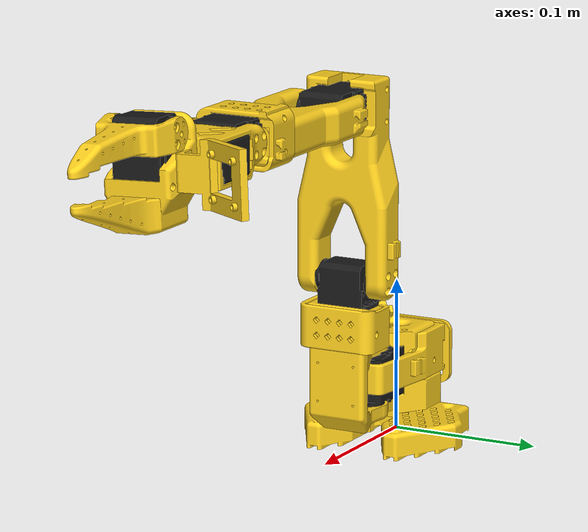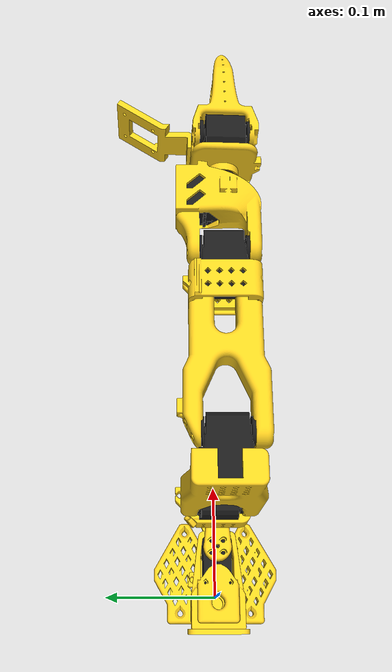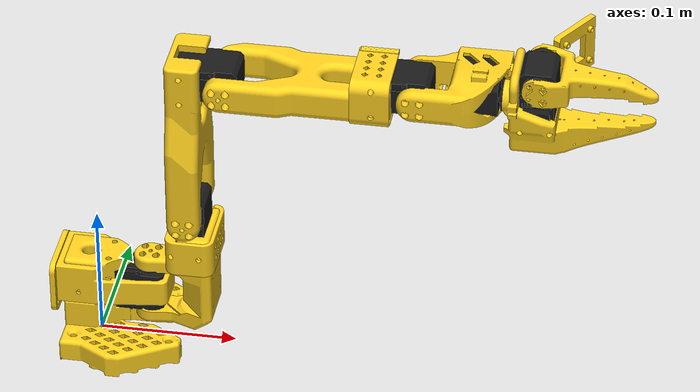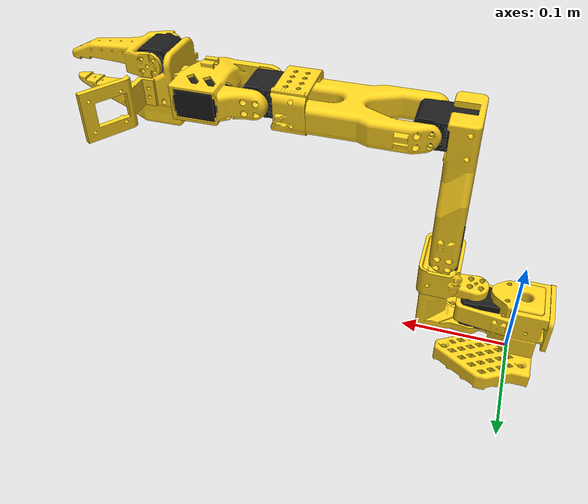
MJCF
<?xml version='1.0' encoding='utf-8'?>
<mujoco model="so101">
  <option integrator="implicitfast" timestep="0.005" cone="elliptic" iterations="10" ls_iterations="20" impratio="10" />

  <compiler angle="radian" meshdir="assets" autolimits="true" />

  <visual>
    <scale contactwidth="0.1" contactheight="0.05" forcewidth="0.02" framelength="0.75" framewidth="0.025" camera="0.2" />
  </visual>

  <default>
    <mesh />

    <default class="so101">
      <joint damping="1" frictionloss="0.1" armature="0.005" />
      <position kp="50" />
      <default class="visual">
        <geom type="mesh" contype="0" conaffinity="0" group="2" />
      </default>
      <default class="collision">
        <geom group="3" condim="3" />
      </default>
      <default class="collision_gripper">
        <geom group="3" condim="6" friction="1 5e-3 5e-4" solref="0.01 1" priority="1" rgba="1.0 0 0 1.0" mass="0" />
      </default>
      <default class="collision_gripper_mesh">
        <geom group="4" condim="6" friction="1 5e-3 5e-4" solref="0.01 1" priority="1" rgba="1.0 0 0 1.0" mass="0" />
      </default>
    </default>

    <default class="sts3215">
      <geom contype="0" conaffinity="0" />
      <joint damping="0.60" frictionloss="0.052" armature="0.028" />

      <position kp="998.22" kv="2.731" forcerange="-2.94 2.94" />
    </default>

    <default class="backlash">

      <joint damping="0.01" frictionloss="0" armature="0.01" limited="true" range="-0.0087267 0.0087267" />
    </default>
  </default>

  <asset>
    <mesh file="waveshare_mounting_plate_so101_v2_drake.obj" name="waveshare_mounting_plate_so101_v2" />
    <mesh file="sts3215_03a_v1_drake.obj" name="sts3215_03a_v1" />
    <mesh file="motor_holder_so101_base_v1_drake.obj" name="motor_holder_so101_base_v1" />
    <mesh file="wrist_roll_follower_so101_v1_drake.obj" name="wrist_roll_follower_so101_v1" />
    <mesh file="moving_jaw_so101_v1_drake.obj" name="moving_jaw_so101_v1" />
    <mesh file="base_motor_holder_so101_v1_drake.obj" name="base_motor_holder_so101_v1" />
    <mesh file="upper_arm_so101_v1_drake.obj" name="upper_arm_so101_v1" />
    <mesh file="wrist_roll_pitch_so101_v2_drake.obj" name="wrist_roll_pitch_so101_v2" />
    <mesh file="under_arm_so101_v1_drake.obj" name="under_arm_so101_v1" />
    <mesh file="rotation_pitch_so101_v1_drake.obj" name="rotation_pitch_so101_v1" />
    <mesh file="motor_holder_so101_wrist_v1_drake.obj" name="motor_holder_so101_wrist_v1" />
    <mesh file="sts3215_03a_no_horn_v1_drake.obj" name="sts3215_03a_no_horn_v1" />
    <mesh file="base_so101_v2_drake.obj" name="base_so101_v2" />
    <mesh file="moving_jaw_so101_gripper_v1_drake.obj" name="moving_jaw_so101_gripper_v1" />
    <mesh file="wrist_roll_follower_so101_camera_mount_drake.obj" name="wrist_roll_follower_so101_camera_mount" />

    <mesh file="wrist_roll_follower_so101_gripper_part0_v1_drake.obj" name="wrist_roll_follower_so101_gripper_part0_v1" />
    <mesh file="moving_jaw_so101_gripper_part0_v1_drake.obj" name="moving_jaw_so101_gripper_part0_v1" />
    <mesh file="moving_jaw_so101_gripper_part1_v1_drake.obj" name="moving_jaw_so101_gripper_part1_v1" />
    <material name="base_motor_holder_so101_v1_material" rgba="1 0.82 0.12 1" />
    <material name="base_so101_v2_material" rgba="1 0.82 0.12 1" />
    <material name="sts3215_03a_v1_material" rgba="0.1 0.1 0.1 1" />
    <material name="waveshare_mounting_plate_so101_v2_material" rgba="1 0.82 0.12 1" />
    <material name="motor_holder_so101_base_v1_material" rgba="1 0.82 0.12 1" />
    <material name="rotation_pitch_so101_v1_material" rgba="1 0.82 0.12 1" />
    <material name="upper_arm_so101_v1_material" rgba="1 0.82 0.12 1" />
    <material name="under_arm_so101_v1_material" rgba="1 0.82 0.12 1" />
    <material name="motor_holder_so101_wrist_v1_material" rgba="1 0.82 0.12 1" />
    <material name="sts3215_03a_no_horn_v1_material" rgba="0.1 0.1 0.1 1.0" />
    <material name="wrist_roll_pitch_so101_v2_material" rgba="1 0.82 0.12 1" />
    <material name="wrist_roll_follower_so101_v1_material" rgba="1 0.82 0.12 1" />
    <material name="moving_jaw_so101_v1_material" rgba="1 0.82 0.12 1" />
  </asset>

  <worldbody>

    <body name="base" pos="0 0 0" quat="1 0 0 0" childclass="so101">
      <inertial pos="0.0137179 -5.19711e-05 0.0334843" mass="0.147" fullinertia="0.000114686 0.000136117 0.000130364 -4.59787e-07 4.97151e-06 9.75275e-08" />

      <geom type="mesh" class="visual" pos="-0.006365 -9.9e-05 -0.0024" quat="1 1 1 1" mesh="base_motor_holder_so101_v1" material="base_motor_holder_so101_v1_material" />

      <geom type="mesh" class="visual" pos="-0.006365 0 -0.0024" quat="1 1 1 1" mesh="base_so101_v2" material="base_so101_v2_material" />

      <geom type="mesh" class="visual" pos="0.0263353 0 0.0437" quat="1 0 0 0" mesh="sts3215_03a_v1" material="sts3215_03a_v1_material" />

      <geom type="mesh" class="visual" pos="-0.0309827 -0.000199 0.0474" quat="1 1 1 1" mesh="waveshare_mounting_plate_so101_v2" material="waveshare_mounting_plate_so101_v2_material" />

      <site group="3" name="baseframe" pos="0 0 0" quat="1 0 0 0" />

      <body name="shoulder" pos="0.0388353 0 0.0624" quat="0 0 -1 0">

        <joint axis="0 0 1" name="shoulder_pan" type="hinge" range="-1.91986 1.91986" class="sts3215" />
        <inertial pos="-0.0307604 -1.7e-05 -0.0252713" mass="0.100006" fullinertia="8.3759e-05 8.10403e-05 2.39783e-05 7.55525e-08 -1.16342e-06 1.54663e-07" />

        <geom type="mesh" class="visual" pos="-0.030399 0.000422 -0.0417" quat="1 1 1 -1" mesh="sts3215_03a_v1" material="sts3215_03a_v1_material" />
        <geom type="box" class="collision" pos="-0.030399 0.000422 -0.0387" quat="1 1 1 -1" size="0.023 0.015 0.01" />

        <geom type="mesh" class="visual" pos="-0.067599 -0.0001778 0.01585" quat="1 1 -1 1" mesh="motor_holder_so101_base_v1" material="motor_holder_so101_base_v1_material" />
        <geom type="box" class="collision" pos="-0.025 0 0.0" quat="1 1 -1 1" size="0.038 0.025 0.02" />

        <geom type="mesh" class="visual" pos="0.012201 2.2e-05 0.0464" quat="1 -1 0 0" mesh="rotation_pitch_so101_v1" material="rotation_pitch_so101_v1_material" />

        <body name="upper_arm" pos="-0.0303992 -0.0182778 -0.0542" quat="1 -1 -1 -1">

          <joint axis="0 0 1" name="shoulder_lift" type="hinge" range="-1.7453293 1.7453293" class="sts3215" />
          <inertial pos="-0.089847 -0.008382 0.018409" mass="0.103" fullinertia="4.08002e-05 0.000147318 0.000142487 -1.97819e-05 -4.03016e-08 8.97326e-09" />

          <geom type="mesh" class="visual" pos="-0.11257 -0.0155 0.0187" quat="0 -1 1 0" mesh="sts3215_03a_v1" material="sts3215_03a_v1_material" />
          <geom type="box" class="collision" pos="-0.06 0 0.02" quat="0 -1 1 0" size="0.01 0.07 0.03" />

          <geom type="mesh" class="visual" pos="-0.065085 0.012 0.0182" quat="0 1 0 0" mesh="upper_arm_so101_v1" material="upper_arm_so101_v1_material" />
          <geom type="box" class="collision" pos="-0.12 -0.014 0.0182" quat="0 1 0 0" size="0.01 0.02 0.015" />

          <body name="lower_arm" pos="-0.11257 -0.028 0" quat="1 0 0 1">

            <joint axis="0 0 1" name="elbow_flex" type="hinge" range="-1.69 1.69" class="sts3215" />
            <inertial pos="-0.098070 0.0032438 0.018283" mass="0.104" fullinertia="2.87438e-05 0.000159844 0.00014529 7.41152e-06 1.26409e-06 -4.90188e-08" />

            <geom type="mesh" class="visual" pos="-0.06485 -0.032 0.0182" quat="0 1 0 0" mesh="under_arm_so101_v1" material="under_arm_so101_v1_material" />
            <geom type="box" class="collision" pos="-0.05 0 0.0182" quat="0 1 0 0" size="0.07 0.01 0.03" />

            <geom type="mesh" class="visual" pos="-0.06485 -0.032 0.018" quat="0 -1 0 0" mesh="motor_holder_so101_wrist_v1" material="motor_holder_so101_wrist_v1_material" />
            <geom type="box" class="collision" pos="-0.125 0.005 0.018" quat="0 -1 0 0" size="0.023 0.013 0.018" />

            <geom type="mesh" class="visual" pos="-0.1224 0.0052 0.0187" quat="0 0 1 0" mesh="sts3215_03a_v1" material="sts3215_03a_v1_material" />

            <body name="wrist" pos="-0.1349 0.0052 0" quat="1 0 0 -1">

              <joint axis="0 0 1" name="wrist_flex" type="hinge" range="-1.658063 1.658063" class="sts3215" />
              <inertial pos="-0.000103312 -0.0386143 0.0281156" mass="0.079" fullinertia="3.68263e-05 2.5391e-05 2.1e-05 1.7893e-08 -5.28128e-08 3.6412e-06" />

              <geom type="mesh" class="visual" pos="0 -0.0424 0.0306" quat="1 1 1 -1" mesh="sts3215_03a_no_horn_v1" material="sts3215_03a_no_horn_v1_material" />
              <geom type="box" class="collision" pos="0 -0.0424 0.0256" quat="1 1 1 -1" size="0.029 0.015 0.018" />

              <geom type="mesh" class="visual" pos="0 -0.028 0.0181" quat="1 -1 -1 -1" mesh="wrist_roll_pitch_so101_v2" material="wrist_roll_pitch_so101_v2_material" />
              <geom type="box" class="collision" pos="0 -0.02 0.0191" quat="1 -1 -1 -1" size="0.027 0.01 0.03" />

              <body name="gripper" pos="5.55112e-17 -0.0611 0.0181" quat="0.0172091 -0.0172091 0.706897 0.706897">

                <joint axis="0 0 1" name="wrist_roll" type="hinge" range="-2.7438473 2.7438473" class="sts3215" />
                <inertial pos="0.000214 0.000245 -0.025187" mass="0.087" fullinertia="2.75087e-05 4.33657e-05 3.45059e-05 -3.35241e-07 -5.7352e-06 -5.17847e-08" />

                <geom type="mesh" class="visual" pos="0.0077 0.0001 -0.0234" quat="1 -1 0 0" mesh="sts3215_03a_v1" material="sts3215_03a_v1_material" />

                <geom type="mesh" class="visual" pos="0 -0.000218 0.00095" quat="0 1 0 0" mesh="wrist_roll_follower_so101_v1" material="wrist_roll_follower_so101_v1_material" />
                <geom type="box" class="collision" pos="0 -0.000218 0.00095" quat="0 1 0 0" size="0.01 0.01 0.018" />

                <geom name="fixed_jaw_box1" class="collision_gripper" type="box" size="0.0325 0.015 0.015" pos="-0.0025 0 -0.022" />
                <geom name="fixed_jaw_box2" class="collision_gripper" type="box" size="0.01 0.015 0.005" pos="-0.024 0 -0.04" />
                <geom name="fixed_jaw_sph_tip1" class="collision_gripper" type="sphere" size="0.00075" pos="-0.0081 0 -0.101" />
                <geom name="fixed_jaw_sph_tip2" class="collision_gripper" type="sphere" size="0.00075" pos="-0.0081 0.0035 -0.0975" />
                <geom name="fixed_jaw_sph_tip3" class="collision_gripper" type="sphere" size="0.00075" pos="-0.0081 -0.0035 -0.0975" />
                <geom type="mesh" class="collision_gripper_mesh" pos="0 -0.000218 0.00095" quat="0 1 0 0" mesh="wrist_roll_follower_so101_gripper_part0_v1" />
                <geom name="fixed_jaw_box3" class="collision_gripper" type="capsule" size="0.0011 0.002" pos="-0.009 0 -0.103" euler="1.57 0 0" />
                <geom name="fixed_jaw_box4" class="collision_gripper" type="box" size="0.001 0.004 0.004" pos="-0.009 0 -0.0982" />
                <geom name="fixed_jaw_box5" class="collision_gripper" type="box" size="0.001 0.005 0.006" pos="-0.0108 0 -0.0905" />
                <geom name="fixed_jaw_box6" class="collision_gripper" type="box" size="0.001 0.009 0.008" pos="-0.0125 0 -0.0727" />
                <geom name="fixed_jaw_box7" class="collision_gripper" type="box" size="0.001 0.01 0.008" pos="-0.0143 0 -0.053" />

                <site group="3" name="gripperframe" pos="0.012 -0.000218 -0.098127" quat="1 0 1 0" />

                <body name="camera_mount">
                  <camera name="wrist_cam" mode="fixed" pos="0.0 0.055 -0.045" euler="-0.57 0 0" resolution="1920 1080" sensorsize="0.00576 0.00324" focal="0.0036 0.0036" />
                  <geom type="mesh" mass="0.012" class="visual" pos="0 -0.000218 0.00095" quat="0 1 0 0" mesh="wrist_roll_follower_so101_camera_mount" material="wrist_roll_follower_so101_v1_material" />
                  <geom name="camera_box1" class="collision_gripper" type="box" size="0.015 0.015 0.003" pos="-0.0025 0.03 -0.03" />
                  <geom name="camera_box2" class="collision_gripper" type="box" size="0.021 0.021 0.003" pos="-0.001 0.06 -0.04" euler="-0.55 0 0" />
                </body>

                <body name="moving_jaw_so101_v1" pos="0.0202 0.0188 -0.0234" quat="1 1 0 0">

                  <joint axis="0 0 1" name="gripper" type="hinge" range="-0.174533 1.7453292" class="sts3215" />
                  <inertial pos="-0.001575 -0.0300244 0.0192755" mass="0.012" fullinertia="6.61427e-06 1.89032e-06 5.28738e-06 -3.19807e-07 -5.90717e-09 -1.09945e-07" />

                  <geom type="mesh" class="visual" pos="0 0 0.0189" quat="1 0 0 0" mesh="moving_jaw_so101_v1" material="moving_jaw_so101_v1_material" />

                  <geom type="mesh" class="collision_gripper_mesh" pos="0 0 0.0189" quat="1 0 0 0" mesh="moving_jaw_so101_gripper_part0_v1" />
                  <geom type="mesh" class="collision_gripper_mesh" pos="0 0 0.0189" quat="1 0 0 0" mesh="moving_jaw_so101_gripper_part1_v1" />
                  <geom name="moving_jaw_box1" class="collision_gripper" type="box" size="0.01 0.01 0.015" pos="-0.0 -0.013 0.019" />
                  <geom name="moving_jaw_sph_tip1" class="collision_gripper" type="sphere" size="0.00075" pos="-0.012 -0.078 0.0192" />
                  <geom name="moving_jaw_sph_tip2" class="collision_gripper" type="sphere" size="0.00075" pos="-0.012 -0.0745 0.0225 " />
                  <geom name="moving_jaw_sph_tip3" class="collision_gripper" type="sphere" size="0.00075" pos="-0.012 -0.0745 0.0155 " />
                  <geom name="moving_jaw_box2" class="collision_gripper" type="box" size="0.001 0.004 0.004" pos="-0.0113 -0.076 0.01875" />
                  <geom name="moving_jaw_box3" class="collision_gripper" type="box" size="0.001 0.005 0.006" pos="-0.0093 -0.067 0.01875" />
                </body>
              </body>
            </body>
          </body>
        </body>
      </body>
    </body>
  </worldbody>

  <actuator>
    <position class="sts3215" name="shoulder_pan" joint="shoulder_pan" ctrlrange="-1.91986 1.91986" />
    <position class="sts3215" name="shoulder_lift" joint="shoulder_lift" ctrlrange="-1.74533 1.74533" />
    <position class="sts3215" name="elbow_flex" joint="elbow_flex" ctrlrange="-1.69 1.69" />
    <position class="sts3215" name="wrist_flex" joint="wrist_flex" ctrlrange="-1.65806 1.65806" />
    <position class="sts3215" name="wrist_roll" joint="wrist_roll" ctrlrange="-2.74385 2.84121" />
    <position class="sts3215" name="gripper" joint="gripper" ctrlrange="-0.17453 1.74533" />
  </actuator>
</mujoco>
